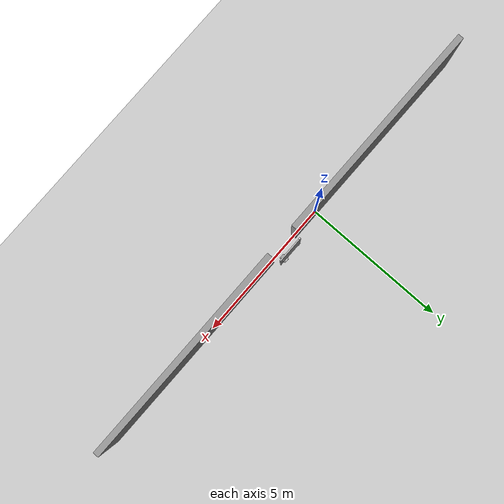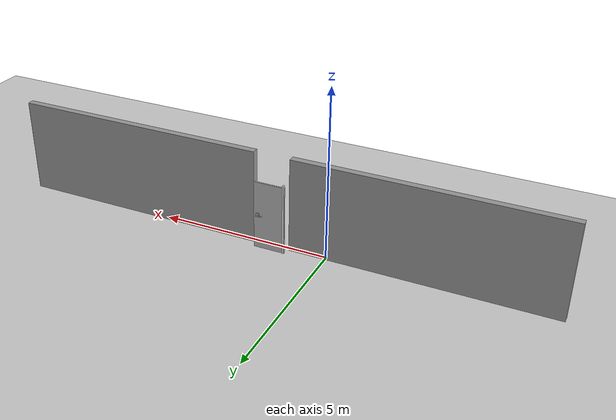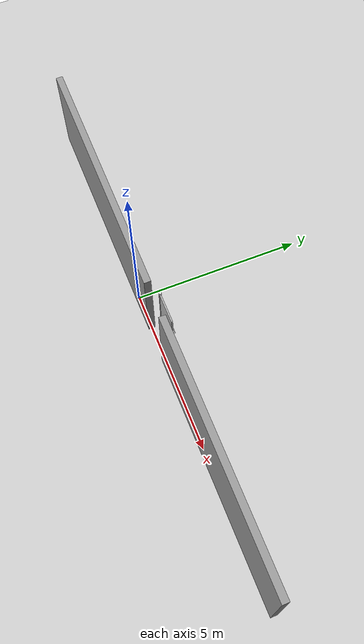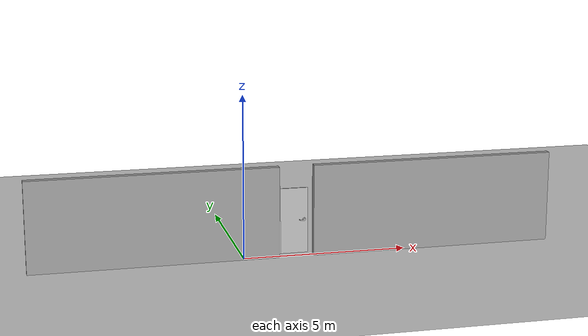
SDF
<sdf version="1.7">
 <world name="default">
  <light name="sun" type="directional">
   <pose>0 0 10 0 -0 0</pose>
   <diffuse>0.8 0.8 0.8 1</diffuse>
   <specular>0.2 0.2 0.2 1</specular>
   <attenuation>
    <range>1000</range>
    <constant>0.9</constant>
    <linear>0.01</linear>
    <quadratic>0.001</quadratic>
   </attenuation>
   <direction>-0.5 0.1 -0.9</direction>
   <spot><inner_angle>0</inner_angle><outer_angle>0</outer_angle><falloff>0</falloff></spot>
  </light>
  <gravity>0 0 -9.8</gravity>
  <magnetic_field>6e-06 2.3e-05 -4.2e-05</magnetic_field>
  <atmosphere type="adiabatic"/>
  <physics type="ode">
   <max_step_size>0.001</max_step_size>
   <real_time_factor>1</real_time_factor>
   <real_time_update_rate>1000</real_time_update_rate>
  </physics>
  <scene><ambient>0.4 0.4 0.4 1</ambient><background>0.7 0.7 0.7 1</background><shadows>1</shadows></scene>
  <spherical_coordinates>
   <surface_model>EARTH_WGS84</surface_model>
   <latitude_deg>0</latitude_deg>
   <longitude_deg>0</longitude_deg>
   <elevation>0</elevation>
   <heading_deg>0</heading_deg>
  </spherical_coordinates>
  <model name="ground_plane">
   <static>1</static>
   <link name="link">
    <collision name="collision">
     <geometry><plane><normal>0 0 1</normal><size>100 100</size></plane></geometry>
     <surface>
      <contact><collide_bitmask>65535</collide_bitmask></contact>
      <friction><ode><mu>100</mu><mu2>50</mu2></ode></friction>
     </surface>
    </collision>
    <visual name="visual">
     <cast_shadows>0</cast_shadows>
     <geometry><plane><normal>0 0 1</normal><size>100 100</size></plane></geometry>
     <material>
      <script><uri>file://media/materials/scripts/gazebo.material</uri><name>Gazebo/Grey</name></script>
     </material>
    </visual>
   </link>
  </model>
  <model name="grey_wall">
   <static>1</static>
   <link name="link">
    <pose>0 0 1.4 0 -0 0</pose>
    <collision name="collision"><geometry><box><size>7.5 0.2 2.8</size></box></geometry></collision>
    <visual name="visual">
     <cast_shadows>0</cast_shadows>
     <geometry><box><size>7.5 0.2 2.8</size></box></geometry>
     <material>
      <script>
       <uri>model://grey_wall/materials/scripts</uri>
       <uri>model://grey_wall/materials/textures</uri>
       <name>vrc/grey_wall</name>
      </script>
     </material>
    </visual>
   </link>
   <pose>-2.67854 0 0 0 -0 0</pose>
  </model>
  <model name="grey_wall_clone">
   <static>1</static>
   <link name="link">
    <pose>0 0 1.4 0 -0 0</pose>
    <collision name="collision"><geometry><box><size>7.5 0.2 2.8</size></box></geometry></collision>
    <visual name="visual">
     <cast_shadows>0</cast_shadows>
     <geometry><box><size>7.5 0.2 2.8</size></box></geometry>
     <material>
      <script>
       <uri>model://grey_wall/materials/scripts</uri>
       <uri>model://grey_wall/materials/textures</uri>
       <name>vrc/grey_wall</name>
      </script>
     </material>
    </visual>
   </link>
   <pose>5.87715 0 0 0 -0 0</pose>
  </model>
  <model name="drc_practice_weighted_door">
   <link name="frame">
    <pose>0.06 -0.0005 0 0 -0 0</pose>
    <inertial>
     <pose>-0.025145 -0.03429 1.0541 0 -0 0</pose>
     <mass>19</mass>
     <inertia>
      <ixx>7.04458</ixx>
      <ixy>0</ixy>
      <ixz>0</ixz>
      <iyy>7.04114</iyy>
      <iyz>0</iyz>
      <izz>0.0114511</izz>
     </inertia>
    </inertial>
    <collision name="collision_2">
     <pose>-0.025145 -0.03429 1.0541 0 -0 0</pose>
     <geometry><box><size>0.05029 0.06858 2.1082</size></box></geometry>
    </collision>
    <visual name="visual">
     <pose>-0.025145 -0.03429 1.0541 0 -0 0</pose>
     <geometry><box><size>0.05029 0.06858 2.1082</size></box></geometry>
     <material>
      <script><uri>file://media/materials/scripts/gazebo.material</uri><name>Gazebo/White</name></script>
     </material>
    </visual>
   </link>
   <link name="door">
    <pose>-0 0 2.04 3.14159 -0 0</pose>
    <inertial>
     <mass>41.3256</mass>
     <pose>0.4569 0.0349 1.016 0 -0 0</pose>
     <inertia><ixx>14.2263</ixx><ixy>0</ixy><ixz>0</ixz><iyy>17.099</iyy><iyz>0</iyz><izz>2.88626</izz></inertia>
    </inertial>
    <collision name="collision">
     <pose>0.4569 0.0349 1.016 0 -0 0</pose>
     <geometry><box><size>0.9144 0.04445 2.032</size></box></geometry>
    </collision>
    <visual name="visual">
     <pose>0 -0.06858 0 0 -0 0</pose>
     <geometry><mesh><uri>model://hinged_door/meshes/door.dae</uri></mesh></geometry>
    </visual>
   </link>
   <link name="handles">
    <pose>0.8144 -0.07 1.05 0 -0 3.14159</pose>
    <inertial>
     <pose>0 -0.035 0 0 -0 0</pose>
     <mass>2</mass>
     <inertia>
      <ixx>0.0110115</ixx>
      <ixy>-0</ixy>
      <ixz>-0.00647057</ixz>
      <iyy>0.0190181</iyy>
      <iyz>0</iyz>
      <izz>0.00824372</izz>
     </inertia>
    </inertial>
    <collision name="handle1_collision">
     <pose>0.015 -0.015 0 -1.57 0 0</pose>
     <geometry><mesh><uri>model://door_handle/meshes/handle.dae</uri></mesh></geometry>
    </collision>
    <visual name="handle1_visual">
     <pose>0.015 -0.015 0 -1.57 0 0</pose>
     <geometry><mesh><uri>model://door_handle/meshes/handle.dae</uri></mesh></geometry>
    </visual>
    <collision name="handle2_collision">
     <pose>0.015 -0.055 0 1.57 -0 0</pose>
     <geometry><mesh><uri>model://door_handle/meshes/handle.dae</uri></mesh></geometry>
    </collision>
    <visual name="handle2_visual">
     <pose>0.015 -0.055 0 1.57 -0 0</pose>
     <geometry><mesh><uri>model://door_handle/meshes/handle.dae</uri></mesh></geometry>
    </visual>
   </link>
   <joint name="handle" type="revolute">
    <parent>door</parent>
    <child>handles</child>
    <pose>0.015 0 0 0 -0 0</pose>
    <axis>
     <xyz expressed_in="__model__">0 1 0</xyz>
     <limit><lower>-1.58</lower><upper>0</upper></limit>
     <dynamics>
      <damping>1</damping>
      <friction>10</friction>
      <spring_reference>0</spring_reference>
      <spring_stiffness>0</spring_stiffness>
     </dynamics>
    </axis>
    <physics><ode><cfm_damping>1</cfm_damping><limit><cfm>0</cfm><erp>0.2</erp></limit></ode></physics>
   </joint>
   <joint name="hinge" type="revolute">
    <parent>frame</parent>
    <child>door</child>
    <axis>
     <xyz expressed_in="__model__">0 0 1</xyz>
     <limit><lower>-1.58</lower><upper>0</upper></limit>
     <dynamics>
      <damping>15.5365</damping>
      <friction>15.5365</friction>
      <spring_reference>0</spring_reference>
      <spring_stiffness>0</spring_stiffness>
     </dynamics>
    </axis>
    <physics><ode><cfm_damping>1</cfm_damping><limit><cfm>0</cfm><erp>0.2</erp></limit></ode></physics>
   </joint>
   <joint name="world_joint" type="revolute">
    <child>frame</child>
    <parent>world</parent>
    <axis>
     <limit><lower>0</lower><upper>0</upper></limit>
     <xyz expressed_in="__model__">0 1 0</xyz>
     <dynamics>
      <damping>1</damping>
      <spring_reference>0</spring_reference>
      <spring_stiffness>0</spring_stiffness>
     </dynamics>
    </axis>
    <physics><ode><cfm_damping>1</cfm_damping><limit><cfm>0</cfm><erp>0.2</erp></limit></ode></physics>
   </joint>
   <pose>1.11596 0.330027 0 0 -0 0</pose>
  </model>
 </world>
</sdf>
